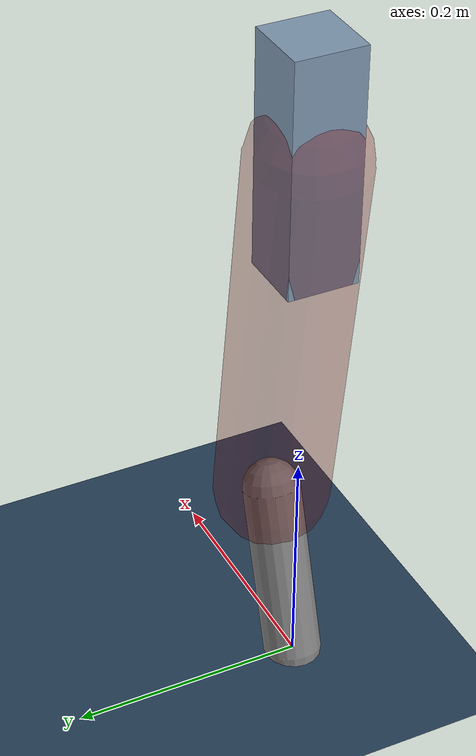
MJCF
<mujoco model="Hopper2D">
	<compiler inertiafromgeom="true" angle="radian" />
	<option timestep="0.001" integrator="implicit" cone="elliptic" solver="Newton" tolerance="1e-10" />

	<default>
		<geom contype="1" conaffinity="1" condim="3" friction="2 0.005 0.0001" solref="0.005 1" />
		<joint limited="true" damping="0.1" />
	</default>

	<asset>
		<texture name="skybox" type="skybox" builtin="gradient" rgb1=".4 .6 .8" rgb2="0 0 0" width="800" height="800" />
		<texture name="grid" type="2d" builtin="checker" rgb1=".1 .2 .3" rgb2=".2 .3 .4" width="300" height="300" mark="edge" markrgb=".2 .3 .4" />
		<material name="ground" texture="grid" texrepeat="1 1" texuniform="true" reflectance="0.1" />
		<material name="leg" rgba="0.5 0.6 0.7 1" />
	</asset>

	<worldbody>

		<geom name="floor" type="plane" size="5 5 0.25" material="ground" />

		<light directional="false" diffuse="0.8 0.8 0.8" specular="0.3 0.3 0.3" pos="0 0 2" dir="0 0 -1" />
		<light mode="targetbodycom" target="base" directional="false" diffuse="0.8 0.8 0.8" specular="0.3 0.3 0.3" pos="0 0 2" dir="0 0 -1" />

		<camera name="fixed" pos="0 -2 1" xyaxes="1 0 0 0 0 1" />
		<camera name="tracking" mode="trackcom" pos="0 -3 1" />

		<body name="root" pos="0 0 0.49005952459476565">
			<joint name="slide_x" type="slide" axis="1 0 0" range="-100 100" />
			<joint name="slide_z" type="slide" axis="0 0 1" range="0 10" />

			<body name="base" pos="0 0 0">
				<geom name="torso" type="box" size="0.03 0.03 0.1" mass="3.2640000000000002" material="leg" />

				<body name="link1" pos="0 0 0" euler="0 1.4385196413269659 0">
					<joint type="hinge" axis="0 -1 0" pos="0 0 0" name="hinge1" limited="true" range="-3.14 3.14" stiffness="0" damping="0.1" />
					<geom name="thigh" type="capsule" fromto="0 0 0 0.34665441638273975 0 0" size="0.05" rgba="0.5 0 0 0.3" mass="1.1172978075099453" />

					<body name="link2" pos="0.34665441638273975 0 0" euler="0 0.4349142430751137 0">
						<joint type="hinge" axis="0 -1 0" pos="0 0 0" name="hinge2" limited="true" range="-3.14 3.14" stiffness="0" damping="0.1" />
						<geom name="shank" type="capsule" fromto="0 0 0 0.15340510821202585 0 0" size="0.025" mass="0.3607645973908233" />

					</body>
				</body>
			</body>
		</body>
	</worldbody>

	<actuator>
		<motor name="torque1" joint="hinge1" ctrlrange="-163.67587243435926 163.67587243435926" ctrllimited="true" gear="1" />
		<motor name="torque2" joint="hinge2" ctrlrange="-57.334168870184826 57.334168870184826" ctrllimited="true" gear="1" />
	</actuator>
</mujoco>
